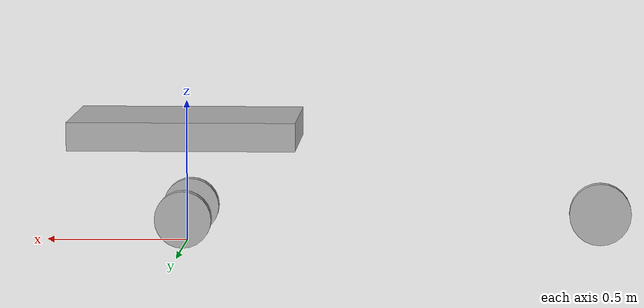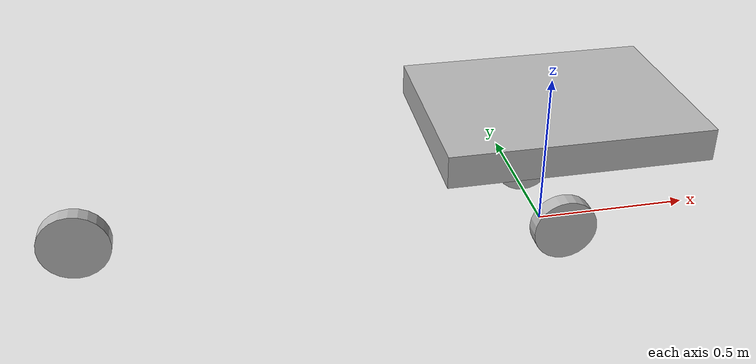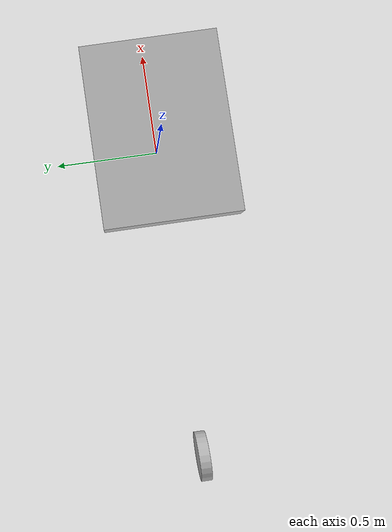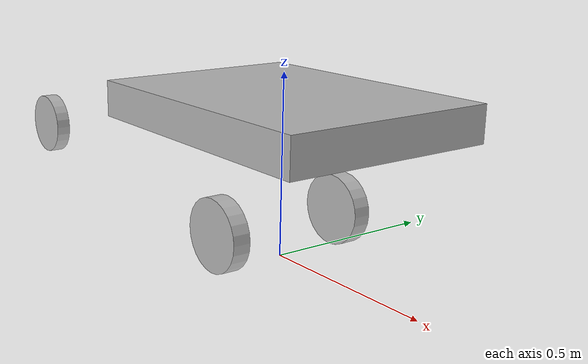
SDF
<?xml version="1.0" ?>
<sdf version="1.6">
  <model name="forklift">
    <static>false</static>

    <!-- Chassis -->
    <link name="chassis">
      <!-- Chassis is raised above the ground -->
      <pose>0 0 0.4 0 0 0</pose>

        <inertial>
	    <!-- mass in kg -->
	    <mass>40</mass>
	    <!-- centre‑of‑mass relative to link frame -->
	    <pose>0 0 0 0 0 0</pose>
	    <!-- diagonal inertia of a 0.8 × 0.6 × 0.1 box, ρ≈780 kg/m³ -->
	    <inertia>
	      <ixx>1.6</ixx>  <iyy>3.4</iyy>  <izz>4.2</izz>
	      <ixy>0</ixy>    <ixz>0</ixz>    <iyz>0</iyz>
	    </inertia>
	  </inertial>

      <collision name="collision">
        <geometry>
          <box>
            <!-- Dimensions: length x width x height -->
            <size>0.8 0.6 0.1</size>
          </box>
        </geometry>
      </collision>
      <visual name="visual">
        <geometry>
          <box>
            <size>0.8 0.6 0.1</size>
          </box>
        </geometry>
      </visual>

    <sensor name="lidar_sensor" type="ray">
      <!-- Position of the sensor on the robot (x y z roll pitch yaw) -->
      <pose>0 0 0.2 0 0 0</pose>
      <update_rate>10</update_rate>               <!-- 10 Hz update rate -->
      <visualize>true</visualize>                 <!-- Show laser beams in Gazebo GUI -->
      <always_on>true</always_on>
      <ray>
        <scan>
          <horizontal>
            <samples>360</samples>               <!-- 360 beams -->
            <resolution>1</resolution>
            <min_angle>-3.14159</min_angle>      <!-- -180 degrees -->
            <max_angle>3.14159</max_angle>       <!-- +180 degrees -->
          </horizontal>
        </scan>
        <range>
          <min>0.3</min>                        <!-- Minimum range 0.12m -->
          <max>20</max>                         <!-- Maximum range 3.5m -->
          <resolution>0.01</resolution>
        </range>
      </ray>

      <!-- Gazebo ROS plugin for LaserScan output -->
      <plugin name="lidar_plugin" filename="libgazebo_ros_ray_sensor.so">
        <ros>
          <use_sim_time>true</use_sim_time>
          <remapping>~/out:=scan</remapping>
        </ros>
        <!-- Publish sensor data as sensor_msgs/LaserScan (2D) -->
        <output_type>sensor_msgs/LaserScan</output_type>
        <!-- Frame ID for the LaserScan message header -->
        <frame_name>lidar_link</frame_name>
      </plugin>
    </sensor>

    </link>

    <!-- Front Left Support Wheel -->
    <link name="front_left_wheel">
      <!-- Placed at x=0.5, y=-0.1; z is chosen so the wheel touches ground -->
      <pose>0 -0.2 0.1 1.5708 0 0</pose>
      <collision name="collision">
        <geometry>
          <cylinder>
            <radius>0.1</radius>
            <length>0.05</length>
          </cylinder>
        </geometry>
            <surface>
      <friction>
        <ode>
          <!-- mu  = primary friction coefficient (tangential to wheel roll direction) -->
          <!-- mu2 = secondary friction coefficient (lateral friction if there's sideways sliding) -->
          <mu>1.0</mu>
          <mu2>1.0</mu2>
        </ode>
      </friction>
    </surface>
      </collision>
      <visual name="visual">
        <geometry>
          <cylinder>
            <radius>0.1</radius>
            <length>0.05</length>
          </cylinder>
        </geometry>
      </visual>
    </link>

    <!-- Front Right Support Wheel -->
    <link name="front_right_wheel">
      <!-- Placed at x=0.5, y=0.1 -->
      <pose>0 0.2 0.1 1.5708 0 0</pose>
      <collision name="collision">
        <geometry>
          <cylinder>
            <radius>0.1</radius>
            <length>0.05</length>
          </cylinder>
        </geometry>
            <surface>
      <friction>
        <ode>
          <!-- mu  = primary friction coefficient (tangential to wheel roll direction) -->
          <!-- mu2 = secondary friction coefficient (lateral friction if there's sideways sliding) -->
          <mu>1.0</mu>
          <mu2>1.0</mu2>
        </ode>
      </friction>
    </surface>
      </collision>
      <visual name="visual">
        <geometry>
          <cylinder>
            <radius>0.1</radius>
            <length>0.05</length>
          </cylinder>
        </geometry>
      </visual>
    </link>

    <!-- Steering Link: intermediary link for drive wheel steering -->
    <link name="steering_link">
      <!-- Positioned at the same location as the drive wheel connection -->
      <pose>-1.47 0 0.1 1.5708 0 0</pose>
    </link>

    <!-- Rear Drive Wheel -->
    <link name="drive_wheel">
      <!-- Also at x=-0.1, y=0 -->
      <pose>-1.47 0 0.1 1.5708 0 0</pose>
      <collision name="collision">
        <geometry>
          <cylinder>
            <radius>0.11</radius>
            <length>0.05</length>
          </cylinder>
        </geometry>
            <surface>
      <friction>
        <ode>
          <!-- mu  = primary friction coefficient (tangential to wheel roll direction) -->
          <!-- mu2 = secondary friction coefficient (lateral friction if there's sideways sliding) -->
          <mu>1.0</mu>
          <mu2>1.0</mu2>
        </ode>
      </friction>
    </surface>
      </collision>
      <visual name="visual">
        <geometry>
          <cylinder>
            <radius>0.11</radius>
            <length>0.05</length>
          </cylinder>
        </geometry>
      </visual>
    </link>

    <!-- Joints -->

    <!-- Fixed joints for front support wheels -->
<joint name="front_left_joint" type="revolute">
  <parent>chassis</parent>
  <child>front_left_wheel</child>
  <pose>0.0 -0.0 0.0 1.5708 0 0</pose>
  <axis>
    <!-- If the wheel’s axle is along Y (after the 1.5708 rad rotation), use 0 1 0 -->
    <xyz>0 1 0</xyz>
    <limit>
      <lower>-1000</lower>
      <upper>1000</upper>
    </limit>
  </axis>
</joint>
<joint name="front_right_joint" type="revolute">
  <parent>chassis</parent>
  <child>front_right_wheel</child>
  <pose>0.0 0.0 0.0 1.5708 0 0</pose>
  <axis>
    <xyz>0 1 0</xyz>
    <limit>
      <lower>-1000</lower>
      <upper>1000</upper>
    </limit>
  </axis>
</joint>

    <!-- Steering Joint: allows the steering link (and drive wheel) to rotate about the vertical (z) axis -->
<joint name="steering_joint" type="revolute">
  <parent>chassis</parent>
  <child>steering_link</child>
  <pose>-0.0 0 0.0 1.5708 0 0</pose>
  <axis>
    <xyz>0 0 1</xyz>
    <limit>
      <lower>-1000</lower>
      <upper>1000</upper>
    </limit>
    <!-- Add dynamics here -->
    <dynamics>
      <!-- Increase damping as needed to reduce free spin -->
      <damping>5.5</damping>
      <!-- Add friction if desired (like Coulomb friction) -->
      <friction>0.0</friction>
    </dynamics>
  </axis>
</joint>

    <!-- Drive Joint: rotates the drive wheel about the lateral (y) axis for forward/backward motion -->
    <joint name="drive_joint" type="revolute">
      <parent>steering_link</parent>
      <child>drive_wheel</child>
      <pose>-0.0 0 0.0 1.5708 0 0</pose>
      <axis>
        <xyz>0 1 0</xyz>
        <limit>
          <!-- Limits set very wide so that wheel rotation is unrestricted -->
          <lower>-1000</lower>
          <upper>1000</upper>
        </limit>
          <dynamics>
          <!-- Increase damping as needed to reduce free spin -->
          <damping>5.5</damping>
          <!-- Add friction if desired (like Coulomb friction) -->
          <friction>0.0</friction>
        </dynamics>
      </axis>
    </joint>

  <plugin name="forklift_controller_plugin" filename="libforklift_controller_plugin.so">
  <!-- Optional: plugin parameters can be added here if needed -->
</plugin>

  </model>

</sdf>
